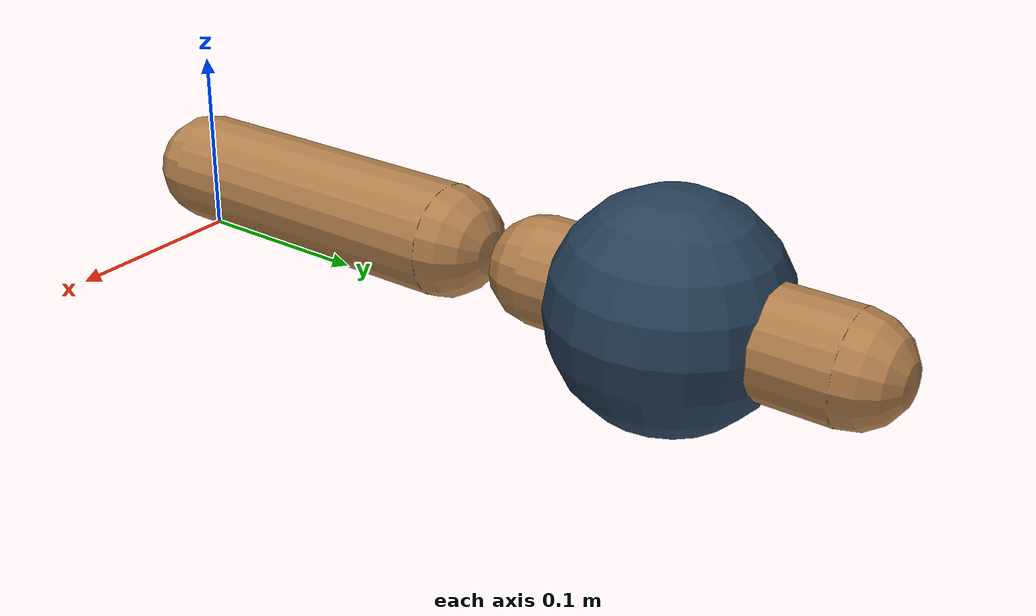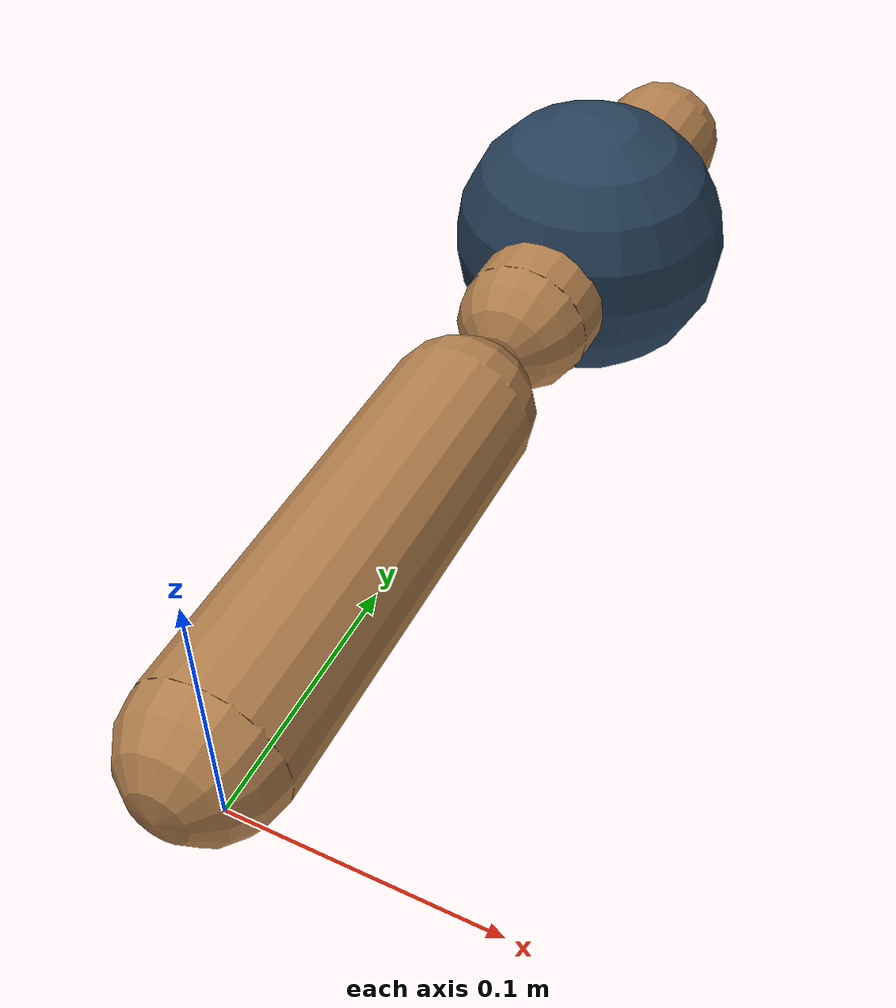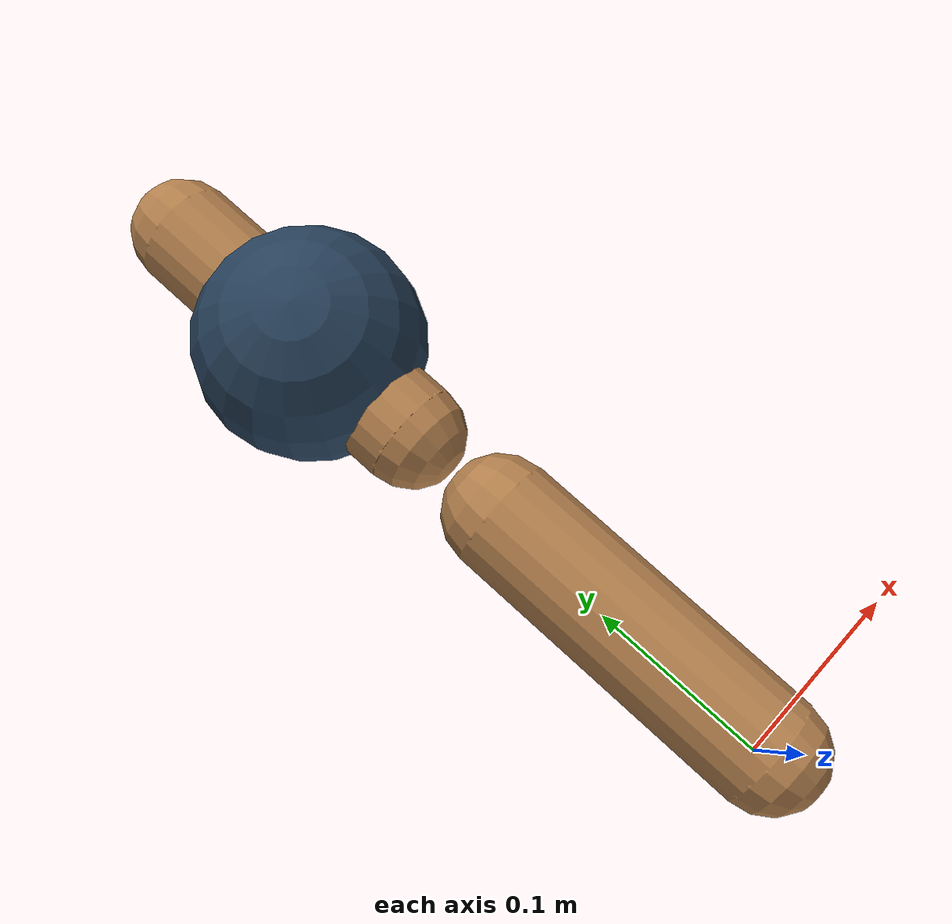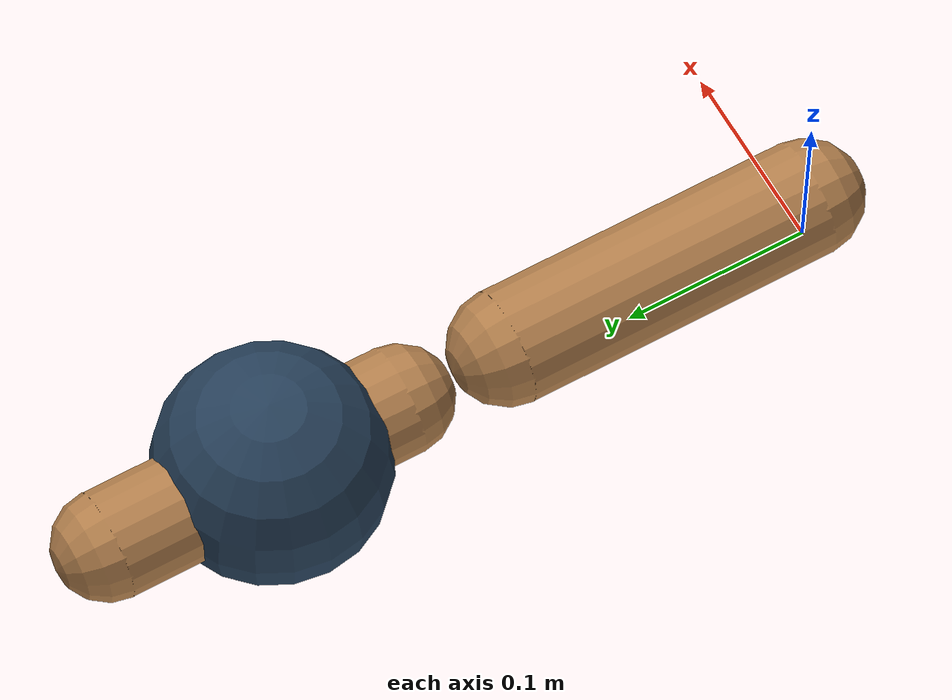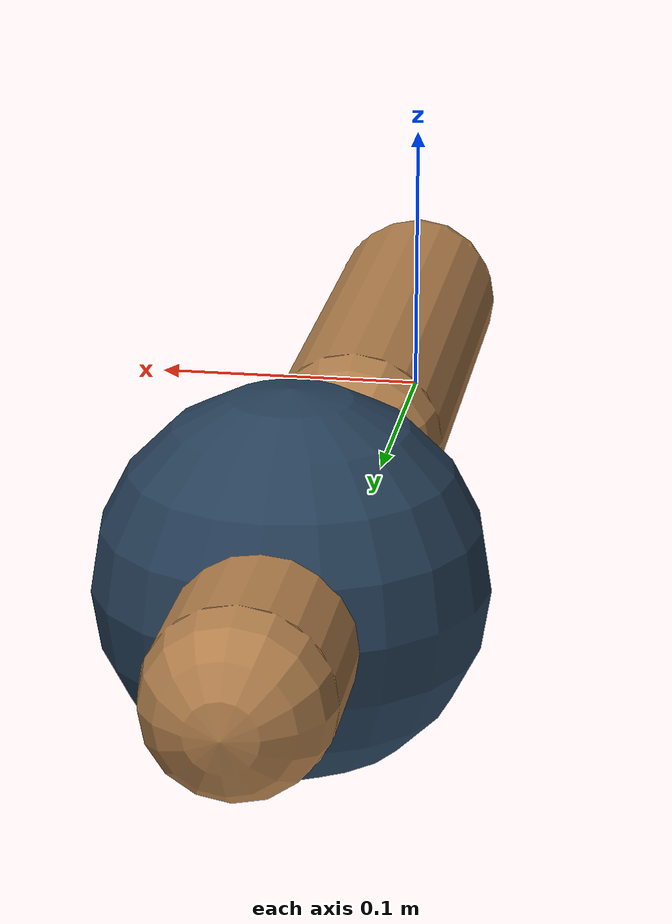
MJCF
<mujoco model="planar point mass">
    <compiler angle="radian"/>
    <visual>
        <quality shadowsize="2048" />
        <headlight ambient="0.4 0.4 0.4" diffuse="0.8 0.8 0.8" specular="0.1 0.1 0.1" />
    </visual>

    <!-- Time step configuration: critical for simulation stability -->
    <option impratio="10" iterations="100" ls_iterations="4" timestep="0.01" >
        <flag eulerdamp="disable" gravity="disable"/>
    </option>

    <asset>
        <!-- Textures and Materials -->
        <texture type="skybox" name="skybox" builtin="gradient" mark="random" rgb1="0.4 0.6 0.8" rgb2="0 0 0" markrgb="1 1 1" width="800" height="4800" />
        <texture type="2d" name="grid" builtin="checker" mark="edge" rgb1="0.1 0.2 0.3" rgb2="0.2 0.3 0.4" markrgb="0.2 0.3 0.4" width="300" height="300" />
        <material name="grid" texture="grid" texuniform="true" reflectance="0.2" />
        <material name="self" rgba="0.7 0.5 0.3 1" />
        <material name="self_default" rgba="0.7 0.5 0.3 1" />
        <material name="self_highlight" rgba="0 0.5 0.3 1" />
        <material name="effector" rgba="0.7 0.4 0.2 1" />
        <material name="effector_default" rgba="0.7 0.4 0.2 1" />
        <material name="effector_highlight" rgba="0 0.5 0.3 1" />
        <material name="decoration" rgba="0.3 0.5 0.7 1" />
        <material name="eye" rgba="0 0.2 1 1" />
        <material name="target" rgba="0.6 0.3 0.3 1" />
        <material name="target_default" rgba="0.6 0.3 0.3 1" />
        <material name="target_highlight" rgba="0.6 0.3 0.3 0.4" />
    </asset>

    <worldbody>
        <!-- Finger Body with Proximal, Distal, and Distal2 Geoms -->
        <body name="finger" pos="0 0 0.035" quat="0.707107 0.707107 0 0">
            <!-- Proximal Joint and Geom with increased damping -->
            <joint name="proximal" range="-0.8 0.8" axis="0 -1 0" damping="0.05" limited="true"  actuatorfrcrange="-0.25 0.25"/>
            <geom name="proximal" type="capsule" material="self" size="0.03" fromto="0 0 0 0 0 -0.17"
                  contype="1" conaffinity="2" />

            <!-- Distal Body with Joint and Geom with increased damping -->
            <body name="distal" pos="0 0 -0.23">
                <joint name="distal" range="-2.8 2.8" axis="0 -1 0" damping="0.05" limited="true"  actuatorfrcrange="-0.25 0.25"/>
                <geom name="distal" type="capsule" size="0.028" material="self" fromto="0 0 0 0 0 -0.16"
                      contype="1" conaffinity="2" solimp="0 0.99 0.1" solref="0.02 1"/>
            </body>
        </body>

        <body name="finger2" pos="0 0 0.035" quat="0.707107 0.707107 0 0">
            <!-- Proximal Joint and Geom with increased damping -->
            <joint name="proximal2" range="-0.8 0.8" axis="0 -1 0" damping="0.05" limited="true"  actuatorfrcrange="-0.25 0.25"/>
            <geom name="proximal2" type="capsule" material="self" size="0.03" fromto="0 0 0 0 0 -0.17"
                  contype="1" conaffinity="2" />

            <!-- Distal Body with Joint and Geom with increased damping -->
            <body name="distal21" pos="0 0 -0.23">
                <joint name="distal21" range="-2.8 2.8" axis="0 -1 0" damping="0.05" limited="true"  actuatorfrcrange="-0.25 0.25"/>
                <geom name="distal21" type="capsule" size="0.028" material="self" fromto="0 0 0 0 0 -0.16"
                      contype="1" conaffinity="2" solimp="0 0.99 0.1" solref="0.02 1"/>
            </body>
        </body>

        <body name="object1" pos="0.0 0.3 0.035">
            <joint name="free_joint_body_1" type="hinge" damping="0.00001"  actuatorfrcrange="-0.25 0.25"/>
            <geom name="pointmass1" type="sphere" size=".06" material="grid" mass=".01" condim="3" contype="7" group="2" solimp="0 0.99 0.1" solref="0.01 1."/>
        </body>
    </worldbody>

    <actuator>
        <motor name="proximal" joint="proximal" gear="1.5" forcerange="-1 1" />
        <motor name="distal" joint="distal" gear="1.5" forcerange="-1 1"/>
        <motor name="proximal2" joint="proximal2" gear="1.5" forcerange="-1 1"/>
        <motor name="distal21" joint="distal21" gear="1.5" forcerange="-1 1"/>
    </actuator>
</mujoco>
